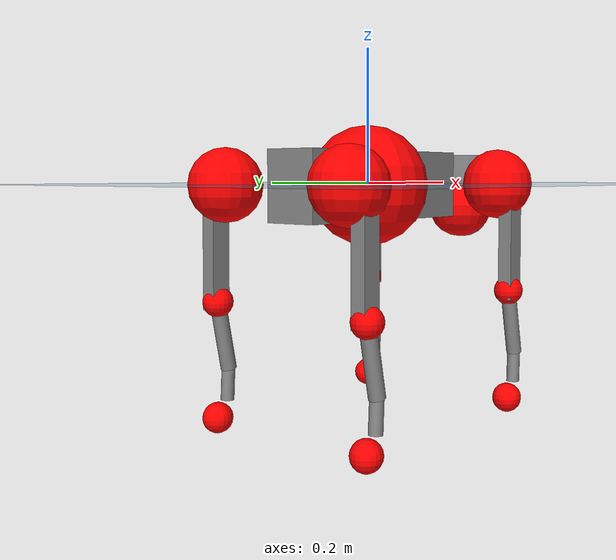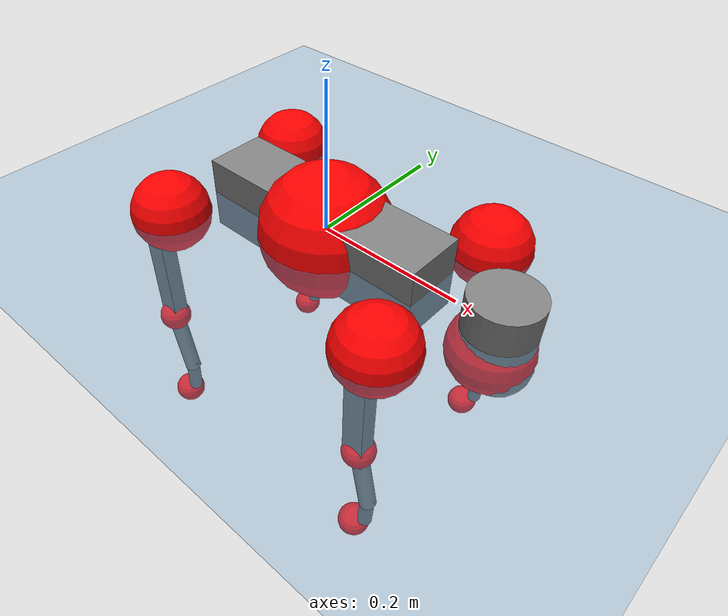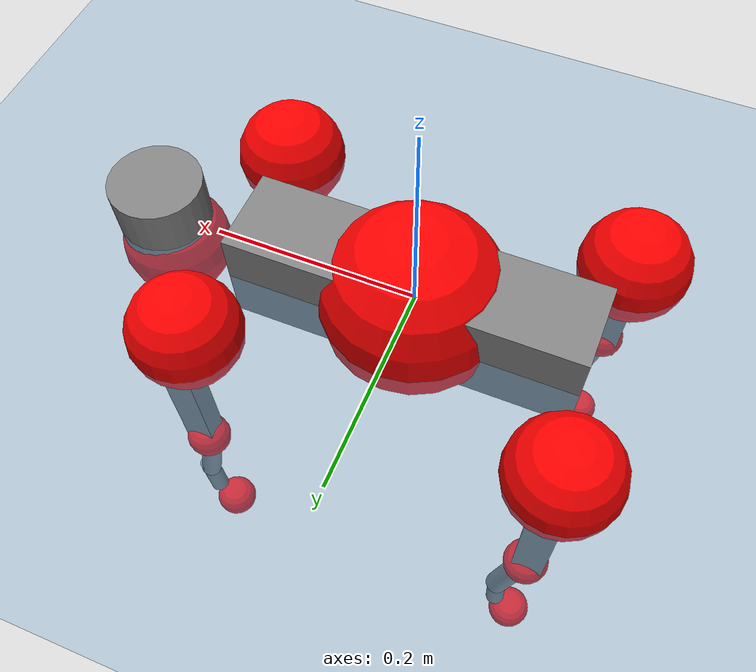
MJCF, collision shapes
<mujoco model="go2">
  <compiler angle="radian" assetdir="assets" balanceinertia="true" inertiafromgeom="false"/>

  <option timestep="0.005" density="1.2" viscosity="2e-05"/>

  <size nkey="1"/>

  <visual>
    <quality shadowsize="8192"/>
    <map shadowclip="0.5"/>
  </visual>

  <default>
    <default class="/">
      <geom contype="0" conaffinity="0" group="1" solref="-1000 -80"/>
      <site size="0.01 0.005 0.005" group="5"/>
      <general forcelimited="true" biastype="affine" gainprm="20" biasprm="0 -20 -0.5"/>
      <default class="go2">
        <joint armature="0.01" damping="0.01" frictionloss="0.2"/>
        <geom condim="1" margin="0.001"/>
        <default class="visual">
          <geom type="mesh" group="2"/>
        </default>
        <default class="collision">
          <geom group="3"/>
          <default class="foot">
            <geom size="0.022 0 0" condim="6" priority="1" friction="0.8 0.02 0.01" solimp="0.015 1 0.022"/>
          </default>
        </default>
        <default class="reward_collision_sphere">
          <geom group="5" rgba="1 0 0 1"/>
        </default>
      </default>
    </default>
  </default>

  <asset>
    <texture type="skybox" colorspace="auto" name="//unnamed_texture_0" builtin="gradient" rgb1="0.95 0.95 0.95" rgb2="0.95 0.95 0.95" width="100" height="600"/>
    <texture type="2d" colorspace="auto" name="texplane" builtin="checker" rgb1="0.345 0.575 0.748" rgb2="0.345 0.575 0.748" markrgb="1 1 1" width="512" height="512"/>
    <material name="MatPlane" class="/" texture="texplane" texuniform="true" texrepeat="2 2" specular="0.9"/>
    <material name="metal" class="/" rgba="0.9 0.95 0.95 1"/>
    <material name="black" class="/" rgba="0 0 0 1"/>
    <material name="white" class="/"/>
    <material name="gray" class="/" rgba="0.671705 0.692426 0.77427 1"/>
    <mesh name="base_0" class="/" file="base_0.obj"/>
    <mesh name="base_1" class="/" file="base_1.obj"/>
    <mesh name="base_2" class="/" file="base_2.obj"/>
    <mesh name="base_3" class="/" file="base_3.obj"/>
    <mesh name="base_4" class="/" file="base_4.obj"/>
    <mesh name="hip_0" class="/" file="hip_0.obj"/>
    <mesh name="hip_1" class="/" file="hip_1.obj"/>
    <mesh name="thigh_0" class="/" file="thigh_0.obj"/>
    <mesh name="thigh_1" class="/" file="thigh_1.obj"/>
    <mesh name="thigh_mirror_0" class="/" file="thigh_mirror_0.obj"/>
    <mesh name="thigh_mirror_1" class="/" file="thigh_mirror_1.obj"/>
    <mesh name="calf_0" class="/" file="calf_0.obj"/>
    <mesh name="calf_1" class="/" file="calf_1.obj"/>
    <mesh name="calf_mirror_0" class="/" file="calf_mirror_0.obj"/>
    <mesh name="calf_mirror_1" class="/" file="calf_mirror_1.obj"/>
    <mesh name="foot" class="/" file="foot.obj"/>
  </asset>

  <worldbody>
    <geom name="floor" class="/" size="100 100 0.125" type="plane" group="0" material="MatPlane"/>
    <light name="toplight_shadow" class="/" pos="0 0 5" dir="0.0990148 0.0990148 -0.990148" type="directional" ambient="0.04 0.04 0.04" diffuse="0.55 0.55 0.55" specular="0.12 0.12 0.12"/>
    <light name="toplight_fill" class="/" pos="0 0 5" dir="0.0990148 0.0990148 -0.990148" type="directional" castshadow="false" ambient="0.04 0.04 0.04" diffuse="0.3 0.3 0.3" specular="0.08 0.08 0.08"/>
    <body name="trunk" childclass="go2" pos="-0.000119638 1.02386e-05 -0.00264251" quat="1 0.000317071 -7.15051e-05 0.000200967">
      <inertial pos="0.0180182 0.000913493 -0.00201589" quat="-0.000269581 0.71373 -0.00135775 0.70042" mass="4.77313" diaginertia="0.0654201 0.0820722 0.00756442"/>
      <joint name="//unnamed_joint_0" type="free" armature="0" damping="0" frictionloss="0"/>
      <geom name="//unnamed_geom_1" class="visual" material="black" mesh="base_0"/>
      <geom name="//unnamed_geom_2" class="visual" material="black" mesh="base_1"/>
      <geom name="//unnamed_geom_3" class="visual" material="black" mesh="base_2"/>
      <geom name="//unnamed_geom_4" class="visual" material="white" mesh="base_3"/>
      <geom name="//unnamed_geom_5" class="visual" material="gray" mesh="base_4"/>
      <geom name="trunk_1" class="collision" size="0.167857 0.0417188 0.0508657" type="box"/>
      <geom name="trunk_2" class="collision" size="0.044619 0.0401571" pos="0.258929 0 0.00794551" type="cylinder"/>
      <geom name="trunk_3" class="collision" size="0.0419419" pos="0.266197 0 -0.0476731"/>
      <geom name="//unnamed_geom_9" class="reward_collision_sphere" size="0.089238"/>
      <geom name="//unnamed_geom_10" class="reward_collision_sphere" size="0.0535428" pos="0.254386 0 -0.0357548"/>
      <site name="imu" pos="-0.0133211 -0.0140455 0.0445406" size="0.0089238"/>
      <camera name="track" pos="0 -1.94814 0" quat="0.707107 0.707107 0 0" mode="trackcom"/>
      <camera name="ego_camera" pos="0.283459 0 0.0357548" quat="-0.5 -0.5 0.5 0.5"/>
      <body name="FL_hip" pos="0.17598 0.0424942 0.00317755" quat="1 0.00028401 -0.000337117 0.000223672">
        <inertial pos="-0.00668547 0.00301846 -0.00296664" quat="0.495909 0.498932 0.506408 0.498691" mass="0.465666" diaginertia="0.000538144 0.000494913 0.000154391"/>
        <joint name="FL_hip_joint" pos="0 0 0" axis="0.999988 -0.00489052 0.00103685" range="-1.09823 1.04458" armature="0.0102565" damping="0.020024" frictionloss="0.160107"/>
        <geom name="//unnamed_geom_11" class="visual" material="metal" mesh="hip_0"/>
        <geom name="//unnamed_geom_12" class="visual" material="gray" mesh="hip_1"/>
        <geom name="//unnamed_geom_13" class="collision" size="0.0410495 0.0178476" pos="0 0.0779255 0" quat="0.707107 0.707107 0 0" type="cylinder"/>
        <geom name="//unnamed_geom_14" class="reward_collision_sphere" size="0.0535428" pos="0 0.0681848 0"/>
        <body name="FL_thigh" pos="0.000488682 0.0919694 0.00344872" quat="1 -0.000161285 0.000264899 -0.000442886">
          <inertial pos="-0.00292114 -0.0218246 -0.028658" quat="0.830966 0.088222 -0.0199634 0.54892" mass="0.812502" diaginertia="0.0036592 0.00516604 0.000270834"/>
          <joint name="FL_thigh_joint" pos="0 0 0" axis="-0.014004 0.999889 0.00507902" range="-1.62736 3.54475" armature="0.00942213" damping="0.0039018" frictionloss="0.17074"/>
          <geom name="//unnamed_geom_15" class="visual" material="metal" mesh="thigh_0"/>
          <geom name="//unnamed_geom_16" class="visual" material="gray" mesh="thigh_1"/>
          <geom name="//unnamed_geom_17" class="collision" size="0.0950385 0.0109317 0.0151705" pos="0 0 -0.0846197" quat="0.707107 0 0.707107 0" type="box"/>
          <body name="FL_calf" pos="-0.00383175 0.00203424 -0.166983" quat="1 -0.000545767 0.000137445 -0.000248418">
            <inertial pos="0.00692424 -0.000474104 -0.112046" quat="0.710474 0.00115883 -0.00511871 0.703704" mass="0.161712" diaginertia="0.000920493 0.0012839 1.60891e-05"/>
            <joint name="FL_calf_joint" pos="0 0 0" axis="-0.00625181 0.999964 0.00571158" range="-2.73731 -0.838426" armature="0.0078744" damping="0.0163842" frictionloss="0.155043"/>
            <geom name="//unnamed_geom_18" class="visual" material="gray" mesh="calf_0"/>
            <geom name="//unnamed_geom_19" class="visual" material="black" mesh="calf_1"/>
            <geom name="FL_calf0" class="collision" size="0.0107086 0.0535428" pos="0.00726818 0 -0.0476731" quat="0.994493 0 -0.104807 0" type="cylinder"/>
            <geom name="//unnamed_geom_21" class="collision" size="0.00981619 0.0290024" pos="0.0181704 0 -0.117594" quat="0.999688 0 0.0249974 0" type="cylinder"/>
            <geom name="//unnamed_geom_22" class="visual" pos="0 0 -0.169239" quat="1 0 0 0" material="black" mesh="foot"/>
            <geom name="FL_foot" class="foot" size="0.0177601" pos="-0.00181704 0 -0.169239"/>
            <geom name="//unnamed_geom_24" class="reward_collision_sphere" size="0.0223095"/>
            <geom name="//unnamed_geom_25" class="reward_collision_sphere" size="0.0223095" pos="-0.00181704 0 -0.169239"/>
            <site name="FL_foot" class="foot" pos="-0.00181704 0 -0.169239" size="0.0089238"/>
          </body>
        </body>
      </body>
      <body name="FR_hip" pos="0.179086 -0.0482509 0.00147051" quat="0.999999 0.00102775 0.000192577 -0.000738064">
        <inertial pos="-0.00477012 -0.00253067 -0.000569546" quat="0.499487 0.504375 0.498479 0.497632" mass="0.48196" diaginertia="0.00054332 0.000495009 0.000151814"/>
        <joint name="FR_hip_joint" pos="0 0 0" axis="0.999988 0.00488192 -0.000770357" stiffness="0.0148012" range="-1.00302 1.02385" armature="0.00908768" damping="0.0223499" frictionloss="0.153575"/>
        <geom name="//unnamed_geom_26" class="visual" pos="0 1.56388e-09 6.70779e-08" quat="4.63268e-05 1 0 0" material="metal" mesh="hip_0"/>
        <geom name="//unnamed_geom_27" class="visual" pos="0 2.53523e-09 -1.65909e-07" quat="4.63268e-05 1 0 0" material="gray" mesh="hip_1"/>
        <geom name="//unnamed_geom_28" class="collision" size="0.0410495 0.0178476" pos="0 -0.0779255 0" quat="0.707107 0.707107 0 0" type="cylinder"/>
        <geom name="//unnamed_geom_29" class="reward_collision_sphere" size="0.0535428" pos="0 -0.0681848 0"/>
        <body name="FR_thigh" pos="0.000689699 -0.0906216 0.000167119" quat="1 -0.000892729 0.000367594 6.70991e-05">
          <inertial pos="-0.00462188 0.0221738 -0.0257482" quat="0.551234 -0.0178362 0.0841878 0.829901" mass="0.79333" diaginertia="0.00363499 0.0049778 0.00028035"/>
          <joint name="FR_thigh_joint" pos="0 0 0" axis="0.00137575 -0.999999 -0.000116781" range="-3.489 1.5444" armature="0.00874186" damping="0" frictionloss="0.171447"/>
          <geom name="//unnamed_geom_30" class="visual" material="metal" mesh="thigh_mirror_0"/>
          <geom name="//unnamed_geom_31" class="visual" material="gray" mesh="thigh_mirror_1"/>
          <geom name="//unnamed_geom_32" class="collision" size="0.0950385 0.0109317 0.0151705" pos="0 0 -0.0846197" quat="0.707107 0 0.707107 0" type="box"/>
          <body name="FR_calf" pos="0.00114638 0.00186406 -0.165956" quat="1 -7.82865e-05 -0.000200642 6.35173e-05">
            <inertial pos="0.00367175 -0.000128645 -0.111939" quat="0.699891 -0.00544849 0.00693553 0.714195" mass="0.172891" diaginertia="0.000960976 0.00130179 1.70604e-05"/>
            <joint name="FR_calf_joint" pos="0 0 0" axis="-0.00189122 -0.999984 0.00527529" range="0.865737 2.67901" armature="0.00881242" damping="0.00583297" frictionloss="0.177685"/>
            <geom name="//unnamed_geom_33" class="visual" material="gray" mesh="calf_mirror_0"/>
            <geom name="//unnamed_geom_34" class="visual" material="black" mesh="calf_mirror_1"/>
            <geom name="FR_calf0" class="collision" size="0.0116009 0.0535428" pos="0.00908522 0 -0.0476731" quat="0.995004 0 -0.0998334 0" type="cylinder"/>
            <geom name="//unnamed_geom_36" class="collision" size="0.00981619 0.0290024" pos="0.0181704 0 -0.117594" quat="0.999688 0 0.0249974 0" type="cylinder"/>
            <geom name="//unnamed_geom_37" class="visual" pos="0 0 -0.169239" quat="1 0 0 0" material="black" mesh="foot"/>
            <geom name="FR_foot" class="foot" size="0.0218447" pos="-0.00181704 0 -0.169239"/>
            <geom name="//unnamed_geom_39" class="reward_collision_sphere" size="0.0223095"/>
            <geom name="//unnamed_geom_40" class="reward_collision_sphere" size="0.0223095" pos="-0.00181704 0 -0.169239"/>
            <site name="FR_foot" class="foot" pos="-0.00181704 0 -0.169239" size="0.0089238"/>
          </body>
        </body>
      </body>
      <body name="RL_hip" pos="-0.176485 0.0479016 0.000848819" quat="1 0.000184438 0.000406026 -1.12718e-05">
        <inertial pos="0.00216125 0.000140493 0.000353974" quat="0.505244 0.49905 0.497617 0.498051" mass="0.481746" diaginertia="0.000559658 0.000540044 0.000146947"/>
        <joint name="RL_hip_joint" pos="0 0 0" axis="-0.999782 -0.00864507 -0.0190039" range="-1.03188 0.991706" armature="0.00896237" damping="0" frictionloss="0.203158"/>
        <geom name="//unnamed_geom_41" class="visual" pos="-9.92867e-10 0 -1.94625e-07" quat="4.63268e-05 0 1 0" material="metal" mesh="hip_0"/>
        <geom name="//unnamed_geom_42" class="visual" pos="-1.60956e-09 0 -1.72605e-07" quat="4.63268e-05 0 1 0" material="gray" mesh="hip_1"/>
        <geom name="//unnamed_geom_43" class="collision" size="0.0410495 0.0178476" pos="0 0.0779255 0" quat="0.707107 0.707107 0 0" type="cylinder"/>
        <geom name="//unnamed_geom_44" class="reward_collision_sphere" size="0.0535428" pos="0 0.0681848 0"/>
        <body name="RL_thigh" pos="0.000909918 0.0907798 -0.000218677" quat="0.999999 0.00112606 0.000663398 -0.000659669">
          <inertial pos="-0.00524267 -0.0242076 -0.025894" quat="0.823871 0.0809428 -0.02179 0.560545" mass="0.807969" diaginertia="0.00373221 0.00501659 0.00029202"/>
          <joint name="RL_thigh_joint" pos="0 0 0" axis="-0.00173166 0.999993 -0.00336432" stiffness="0.015837" range="-0.514674 4.54638" armature="0.00872745" damping="0" frictionloss="0.176906"/>
          <geom name="//unnamed_geom_45" class="visual" material="metal" mesh="thigh_0"/>
          <geom name="//unnamed_geom_46" class="visual" material="gray" mesh="thigh_1"/>
          <geom name="//unnamed_geom_47" class="collision" size="0.0950385 0.0109317 0.0151705" pos="0 0 -0.0846197" quat="0.707107 0 0.707107 0" type="box"/>
          <body name="RL_calf" pos="0.00231588 -0.000908528 -0.168551" quat="0.999999 -2.73932e-05 -0.000588992 -0.000977969">
            <inertial pos="0.00812746 -0.00216244 -0.114944" quat="0.710332 0.00145204 -0.00504794 0.703847" mass="0.167244" diaginertia="0.000899114 0.00130084 1.6703e-05"/>
            <joint name="RL_calf_joint" pos="0 0 0" axis="-2.81811e-06 0.999912 -0.0132528" range="-2.7196 -0.828737" armature="0.00859151" damping="0.0153247" frictionloss="0.202681"/>
            <geom name="//unnamed_geom_48" class="visual" material="gray" mesh="calf_0"/>
            <geom name="//unnamed_geom_49" class="visual" material="black" mesh="calf_1"/>
            <geom name="RL_calf0" class="collision" size="0.0116009 0.0535428" pos="0.00908522 0 -0.0476731" quat="0.995004 0 -0.0998334 0" type="cylinder"/>
            <geom name="//unnamed_geom_51" class="collision" size="0.00981619 0.0290024" pos="0.0181704 0 -0.117594" quat="0.999688 0 0.0249974 0" type="cylinder"/>
            <geom name="//unnamed_geom_52" class="visual" pos="0 0 -0.169239" quat="1 0 0 0" material="black" mesh="foot"/>
            <geom name="RL_foot" class="foot" size="0.0176777" pos="-0.00181704 0 -0.169239"/>
            <geom name="//unnamed_geom_54" class="reward_collision_sphere" size="0.0223095"/>
            <geom name="//unnamed_geom_55" class="reward_collision_sphere" size="0.0223095" pos="-0.00181704 0 -0.169239"/>
            <site name="RL_foot" class="foot" pos="-0.00181704 0 -0.169239" size="0.0089238"/>
          </body>
        </body>
      </body>
      <body name="RR_hip" pos="-0.176402 -0.0427188 0.0017175" quat="1 -0.000153768 0.000741917 0.000212805">
        <inertial pos="0.00536527 0.00103532 -0.00243253" quat="0.499162 0.496601 0.498091 0.506093" mass="0.457645" diaginertia="0.000546797 0.000487368 0.000147039"/>
        <joint name="RR_hip_joint" pos="0 0 0" axis="-0.999864 -0.00587869 -0.0153785" range="-1.08745 1.06158" armature="0.00807625" damping="0" frictionloss="0.203566"/>
        <geom name="//unnamed_geom_56" class="visual" pos="9.95137e-10 1.56388e-09 -2.61703e-07" quat="2.14617e-09 4.63268e-05 4.63268e-05 -1" material="metal" mesh="hip_0"/>
        <geom name="//unnamed_geom_57" class="visual" pos="1.60394e-09 2.53523e-09 -6.69514e-09" quat="2.14617e-09 4.63268e-05 4.63268e-05 -1" material="gray" mesh="hip_1"/>
        <geom name="//unnamed_geom_58" class="collision" size="0.0410495 0.0178476" pos="0 -0.0779255 0" quat="0.707107 0.707107 0 0" type="cylinder"/>
        <geom name="//unnamed_geom_59" class="reward_collision_sphere" size="0.0535428" pos="0 -0.0681848 0"/>
        <body name="RR_thigh" pos="0.000711642 -0.0938196 -0.000493532" quat="1 3.15774e-06 5.58561e-06 -1.35955e-05">
          <inertial pos="-0.00338048 0.0217273 -0.0231768" quat="0.548521 -0.0166036 0.0745122 0.832645" mass="0.814234" diaginertia="0.00373047 0.00515691 0.000281412"/>
          <joint name="RR_thigh_joint" pos="0 0 0" axis="-0.00872802 -0.999955 0.00382737" stiffness="0.00906786" range="-4.49014 0.498799" armature="0.00898612" damping="0.0200878" frictionloss="0.193538"/>
          <geom name="//unnamed_geom_60" class="visual" material="metal" mesh="thigh_mirror_0"/>
          <geom name="//unnamed_geom_61" class="visual" material="gray" mesh="thigh_mirror_1"/>
          <geom name="//unnamed_geom_62" class="collision" size="0.0950385 0.0109317 0.0151705" pos="0 0 -0.0846197" quat="0.707107 0 0.707107 0" type="box"/>
          <body name="RR_calf" pos="0.00161519 -0.00235685 -0.16988" quat="0.999999 -0.000461306 0.000297283 -0.00119462">
            <inertial pos="0.00827781 0.00118911 -0.112717" quat="0.705547 -0.00515723 -0.00101592 0.708644" mass="0.162625" diaginertia="0.000893867 0.00121422 1.6238e-05"/>
            <joint name="RR_calf_joint" pos="0 0 0" axis="-0.00451882 -0.999983 0.00368313" stiffness="0.00158005" range="0.880974 2.75696" armature="0.00931582" damping="0.0154522" frictionloss="0.175718"/>
            <geom name="//unnamed_geom_63" class="visual" material="gray" mesh="calf_mirror_0"/>
            <geom name="//unnamed_geom_64" class="visual" material="black" mesh="calf_mirror_1"/>
            <geom name="RR_calf0" class="collision" size="0.0116009 0.0535428" pos="0.00908522 0 -0.0476731" quat="0.995004 0 -0.0998334 0" type="cylinder"/>
            <geom name="//unnamed_geom_66" class="collision" size="0.00981619 0.0290024" pos="0.0181704 0 -0.117594" quat="0.999688 0 0.0249974 0" type="cylinder"/>
            <geom name="//unnamed_geom_67" class="visual" pos="0 0 -0.169239" quat="1 0 0 0" material="black" mesh="foot"/>
            <geom name="RR_foot" class="foot" size="0.0197923" pos="-0.00181704 0 -0.169239"/>
            <geom name="//unnamed_geom_69" class="reward_collision_sphere" size="0.0223095"/>
            <geom name="//unnamed_geom_70" class="reward_collision_sphere" size="0.0223095" pos="-0.00181704 0 -0.169239"/>
            <site name="RR_foot" class="foot" pos="-0.00181704 0 -0.169239" size="0.0089238"/>
          </body>
        </body>
      </body>
    </body>
  </worldbody>

  <contact>
    <pair class="/" geom1="floor" geom2="FL_foot" name="//unnamed_contact_0"/>
    <pair class="/" geom1="floor" geom2="FR_foot" name="//unnamed_contact_1"/>
    <pair class="/" geom1="floor" geom2="RL_foot" name="//unnamed_contact_2"/>
    <pair class="/" geom1="floor" geom2="RR_foot" name="//unnamed_contact_3"/>
  </contact>

  <actuator>
    <general name="FL_hip" class="/" joint="FL_hip_joint" forcerange="-18.9136 18.9136" gainprm="18.3848" biasprm="0 -18.3848 -0.474227"/>
    <general name="FL_thigh" class="/" joint="FL_thigh_joint" forcerange="-21.0644 21.0644" gainprm="18.3848" biasprm="0 -18.3848 -0.474227"/>
    <general name="FL_calf" class="/" joint="FL_calf_joint" forcerange="-42.2865 42.2865" gainprm="18.3848" biasprm="0 -18.3848 -0.474227"/>
    <general name="FR_hip" class="/" joint="FR_hip_joint" forcerange="-19.9098 19.9098" gainprm="18.3848" biasprm="0 -18.3848 -0.474227"/>
    <general name="FR_thigh" class="/" joint="FR_thigh_joint" forcerange="-22.7871 22.7871" gainprm="18.3848" biasprm="0 -18.3848 -0.474227"/>
    <general name="FR_calf" class="/" joint="FR_calf_joint" forcerange="-36.4447 36.4447" gainprm="18.3848" biasprm="0 -18.3848 -0.474227"/>
    <general name="RL_hip" class="/" joint="RL_hip_joint" forcerange="-23.3065 23.3065" gainprm="18.3848" biasprm="0 -18.3848 -0.474227"/>
    <general name="RL_thigh" class="/" joint="RL_thigh_joint" forcerange="-21.1945 21.1945" gainprm="18.3848" biasprm="0 -18.3848 -0.474227"/>
    <general name="RL_calf" class="/" joint="RL_calf_joint" forcerange="-36.2281 36.2281" gainprm="18.3848" biasprm="0 -18.3848 -0.474227"/>
    <general name="RR_hip" class="/" joint="RR_hip_joint" forcerange="-20.9166 20.9166" gainprm="18.3848" biasprm="0 -18.3848 -0.474227"/>
    <general name="RR_thigh" class="/" joint="RR_thigh_joint" forcerange="-21.0512 21.0512" gainprm="18.3848" biasprm="0 -18.3848 -0.474227"/>
    <general name="RR_calf" class="/" joint="RR_calf_joint" forcerange="-40.291 40.291" gainprm="18.3848" biasprm="0 -18.3848 -0.474227"/>
  </actuator>

  <sensor>
    <gyro site="imu" name="imu_angular_velocity"/>
    <velocimeter site="imu" name="imu_linear_velocity"/>
    <framelinvel objtype="site" objname="FL_foot" name="FL_foot_global_linear_velocity"/>
    <framelinvel objtype="site" objname="FR_foot" name="FR_foot_global_linear_velocity"/>
    <framelinvel objtype="site" objname="RL_foot" name="RL_foot_global_linear_velocity"/>
    <framelinvel objtype="site" objname="RR_foot" name="RR_foot_global_linear_velocity"/>
  </sensor>

  <keyframe>
    <key name="home" qpos="0 0 0.325 1 0 0 0 0.1 0.8 -1.5 -0.1 -0.8 1.5 -0.1 0.8 -1.5 0.1 -0.8 1.5"/>
  </keyframe>
</mujoco>
